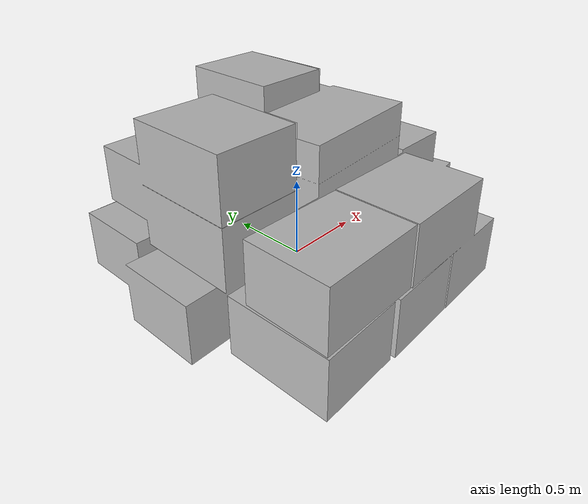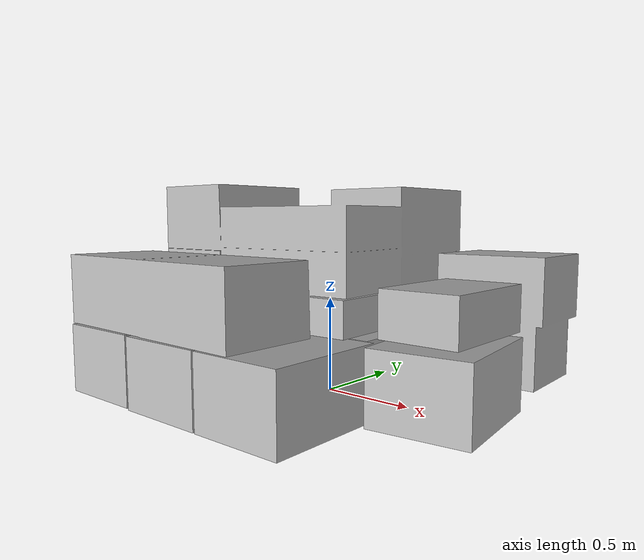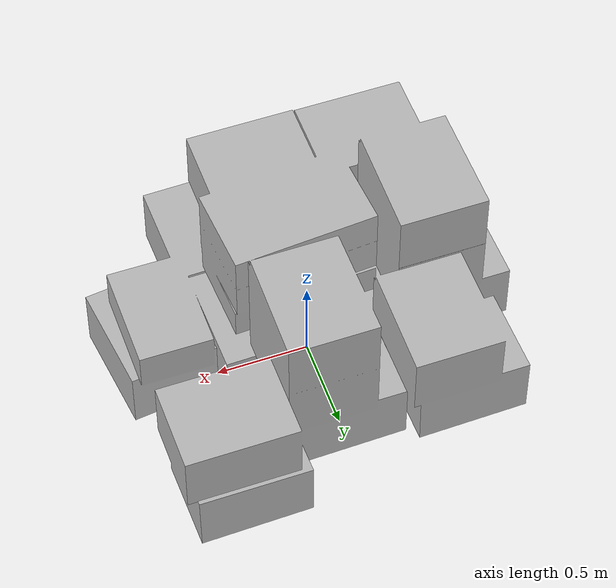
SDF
<?xml version="1.0" ?>
<sdf version="1.6">
  <model name="aws_robomaker_warehouse_ClutteringA_01_classic">
    <link name="link">
      <inertial>
        <mass>2</mass>
        <inertia>
          <ixx>0.841</ixx>
          <ixy>0</ixy>
          <ixz>0</ixz>
          <iyy>0.954</iyy>
          <iyz>0</iyz>
          <izz>1.422</izz>
        </inertia>
      </inertial>
      <collision name="collision">
        <geometry>
          <mesh>
            <uri>model://aws_robomaker_warehouse_ClutteringA_01_classic/meshes/aws_robomaker_warehouse_ClutteringA_01_classic_collision.DAE</uri>
            <scale>1 1 1</scale>
          </mesh>
        </geometry>
        <surface>
          <friction>
            <ode>
              <mu>0.6</mu>
              <mu2>0.6</mu2>
              <fdir1>0 0 0</fdir1>
              <slip1>0</slip1>
              <slip2>0</slip2>
            </ode>
            <torsional>
              <coefficient>1</coefficient>
              <patch_radius>0</patch_radius>
              <surface_radius>0</surface_radius>
              <use_patch_radius>1</use_patch_radius>
              <ode>
                <slip>0</slip>
              </ode>
            </torsional>
          </friction>
        </surface>
      </collision>
      <visual name="visual">
        <geometry>
          <mesh>
            <uri>model://aws_robomaker_warehouse_ClutteringA_01_classic/meshes/aws_robomaker_warehouse_ClutteringA_01_classic_visual.DAE</uri>
          </mesh>
        </geometry>
        <meta> <layer> 1 </layer></meta>
      </visual>
    </link>
    <static>1</static>
  </model>
</sdf>
